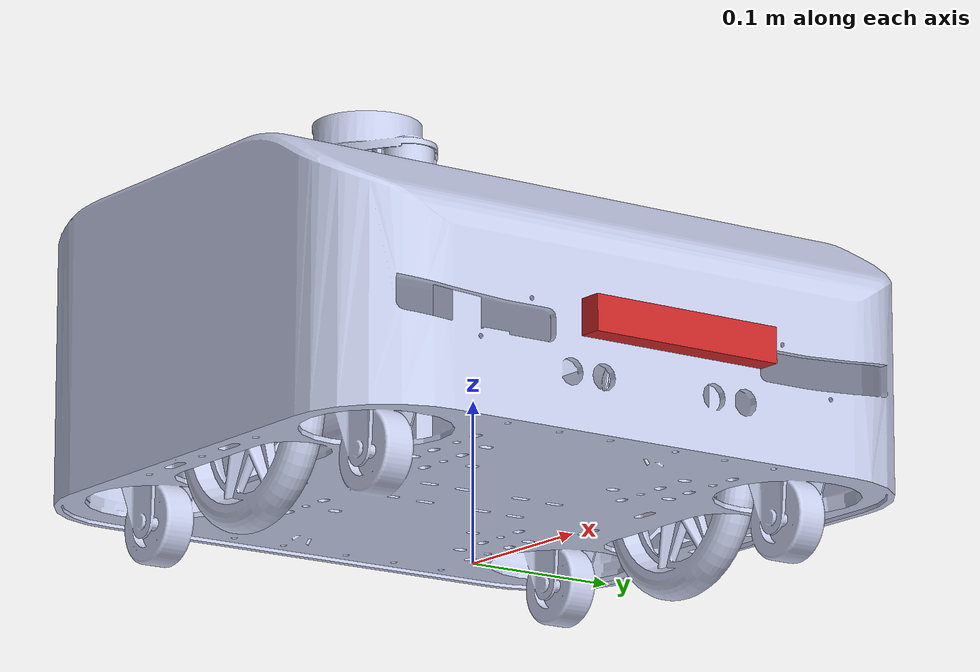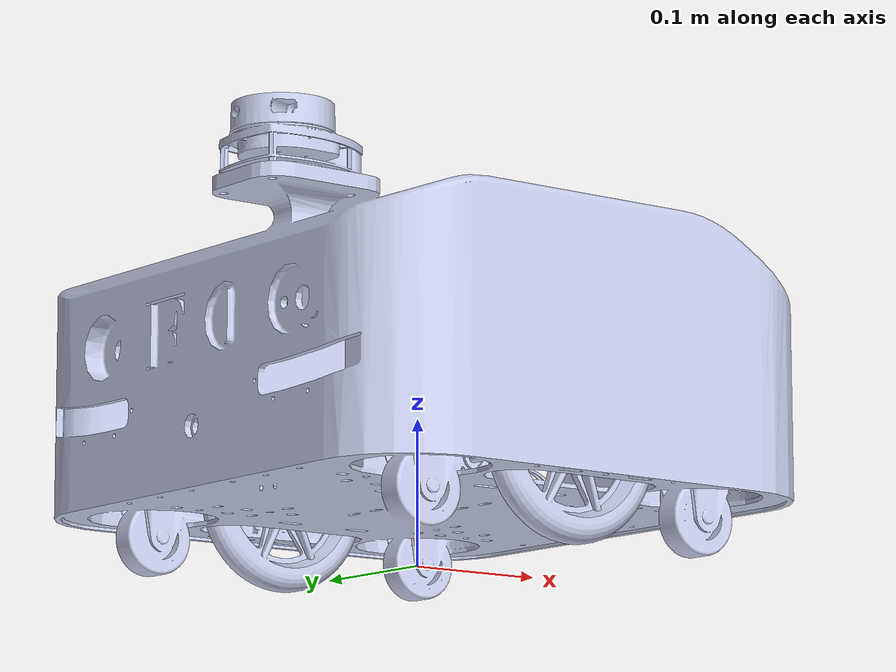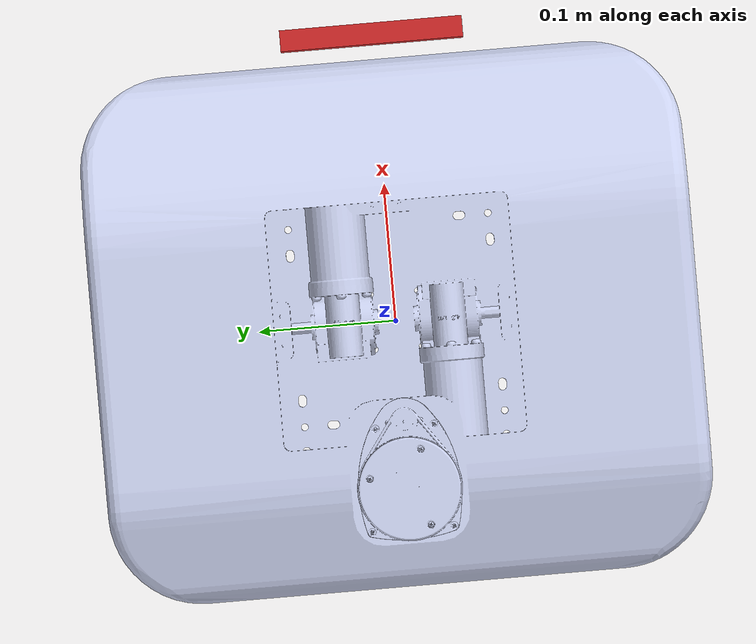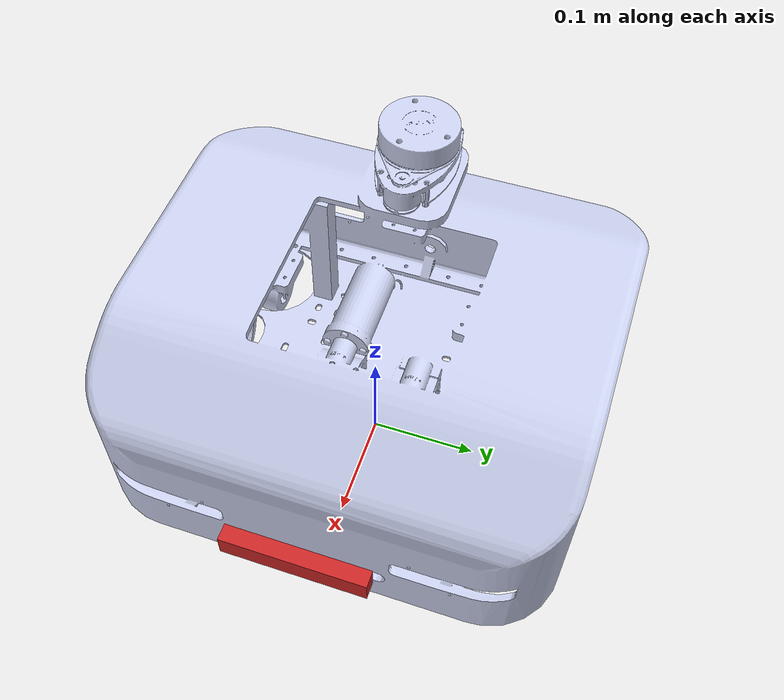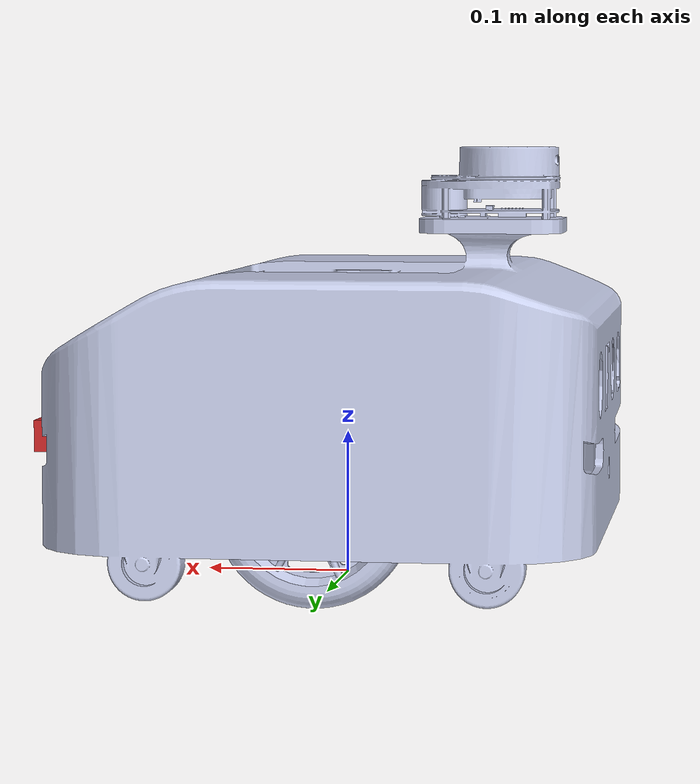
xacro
<?xml version="1.0"?>
<robot xmlns:xacro="http://www.ros.org/wiki/xacro"  name="version_0">

    <!-- Example link -->
    <xacro:include filename="robot_core.xacro" />

    <xacro:include filename="lidar.xacro" />
    <xacro:include filename="camera.xacro" />
</robot>

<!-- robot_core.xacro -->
<robot xmlns:xacro="http://www.ros.org/wiki/xacro">

<!-- Base Footprint Setup -->

<link name="base_footprint" />
<joint name="base_footprint_joint" type="fixed">
    <origin xyz="0 0 0" rpy="0 0 0" />
    <parent link="base_footprint" />
    <child link="base_link" />
</joint>

<!-- Base Link Body -->

<link name="base_link">
    <inertial>
        <origin xyz="-0.010357 0.00080258 0.12082" rpy="0 0 0" />
        <mass value="3.3192" />
        <inertia
        ixx="0.058318"
        ixy="0.00047719"
        ixz="0.0017019"
        iyy="0.049572"
        iyz="1.0982E-05"
        izz="0.090114" />
    </inertial>
    <visual>
        <origin xyz="0 0 0" rpy="0 0 0" />
        <geometry>
            <mesh filename="package://robot_urdf/meshes/base_link.STL" />
        </geometry>
        <material name="">
            <color rgba="0.79216 0.81961 0.93333 1" />
        </material>
    </visual>
    <collision>
        <origin xyz="0 0 0" rpy="0 0 0" />
        <geometry>
            <mesh filename="package://robot_urdf/meshes/base_link.STL" />
        </geometry>
    </collision>
</link>

<gazebo reference="base_link">
    <material>Gazebo/White</material>
    <mu1 value="0.001"/>
    <mu2 value="0.001"/>
</gazebo>

<!-- Right Wheel + Joint -->

<link name="right_wheel">
    <inertial>
        <origin xyz="-1.7659E-14 -6.4782E-14 -2.6336E-05" rpy="0 0 0" />
        <mass value="0.15848" />
        <inertia
        ixx="0.00022462"
        ixy="5.5078E-17"
        ixz="-1.9887E-17"
        iyy="0.00022462"
        iyz="-7.6718E-17"
        izz="0.00043866" />
    </inertial>
    <visual>
        <origin xyz="0 0 0" rpy="0 0 0" />
        <geometry>
            <mesh filename="package://robot_urdf/meshes/right_wheel.STL" />
        </geometry>
        <material name="">
            <color rgba="0.79216 0.81961 0.93333 1" />
        </material>
    </visual>
    <collision>
        <origin xyz="0 0 0" rpy="0 0 0" />
        <geometry>
            <mesh filename="package://robot_urdf/meshes/right_wheel.STL" />
        </geometry>
    </collision>
</link>

<joint name="right_wheel" type="continuous">
    <origin xyz="0.0005 -0.15942 0.065" rpy="-1.5708 0 -3.1416" />
    <parent link="base_link" />
    <child link="right_wheel" />
    <axis xyz="0 0 -1" />
</joint>

<gazebo reference="right_wheel">
    <material>Gazebo/Black</material>
</gazebo>

<!-- Left Wheel + Joint -->

<link name="left_wheel">
    <inertial>
        <origin xyz="5.8898E-14 -3.228E-14 2.6336E-5" rpy="0 0 0" />
        <mass value="0.15848" />
        <inertia
            ixx="0.00022462"
            ixy="-7.1336E-17"
            ixz="-6.9014E-17"
            iyy="0.00022462"
            iyz="3.8969E-17"
            izz="0.00043866" />
    </inertial>
    <visual>
        <origin xyz="0 0 0" rpy="0 0 0" />
        <geometry>
            <mesh filename="package://robot_urdf/meshes/left_wheel.STL" />
        </geometry>
        <material name="">
            <color rgba="0.79216 0.81961 0.93333 1" />
        </material>
    </visual>
    <collision>
        <origin xyz="0 0 0" rpy="0 0 0" />
        <geometry>
            <mesh filename="package://robot_urdf/meshes/left_wheel.STL" />
        </geometry>
    </collision>
</link>

<joint name="left_wheel" type="continuous">
    <origin xyz="0.0005 0.15807 0.065" rpy="-1.5708 0 0" />
    <parent link="base_link" />
    <child link="left_wheel" />
    <axis xyz="0 0 1" />
</joint>

<gazebo reference="left_wheel">
    <material>Gazebo/Black</material>
</gazebo>

<transmission name="tran1">
    <type>transmission_interface/SimpleTransmission</type>
    <joint name="right_wheel_joint">
      <hardwareInterface>hardware_interface/VelocityJointInterface</hardwareInterface>
    </joint>
    <actuator name="motor1">
       <hardwareInterface>hardware_interface/VelocityJointInterface</hardwareInterface>
     <mechanicalReduction>1</mechanicalReduction>
    </actuator>
  </transmission>

  <transmission name="tran2">
    <type>transmission_interface/SimpleTransmission</type>
    <joint name="left_wheel_joint">
      <hardwareInterface>hardware_interface/VelocityJointInterface</hardwareInterface>
    </joint>
    <actuator name="motor2">
      <hardwareInterface>hardware_interface/VelocityJointInterface</hardwareInterface>
      <mechanicalReduction>1</mechanicalReduction>
    </actuator>
  </transmission>

</robot>

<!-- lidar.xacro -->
<robot xmlns:xacro="http://www.ros.org/wiki/xacro" >

    <link name="laser">
    <inertial>
      <origin
        xyz="0.010632 -0.0016703 -0.018432"
        rpy="0 0 0" />
      <mass value="0.073084" />
      <inertia
        ixx="1.9581E-05"
        ixy="-1.0387E-07"
        ixz="-4.2835E-07"
        iyy="2.4125E-05"
        iyz="9.4546E-09"
        izz="4.1418E-05" />
    </inertial>
    <visual>
      <origin
        xyz="0 0 0" rpy="0 0 0" />
      <geometry>
        <mesh filename="package://robot_urdf/meshes/lidar.STL" />
      </geometry>
      <material
        name="">
        <color rgba="0.79216 0.81961 0.93333 1" />
      </material>
    </visual>
    <collision>
      <origin
        xyz="0 0 0"
        rpy="0 0 0" />
      <geometry>
        <mesh filename="package://robot_urdf/meshes/lidar.STL" />
      </geometry>
    </collision>
  </link>

  <joint name="laser" type="fixed">
    <origin
      xyz="-0.11245 0.0011383 0.29097"
      rpy="0 0 0" />
    <parent
      link="base_link" />
    <child
      link="laser" />
    <axis
      xyz="0 0 0" />
  </joint>

  <gazebo reference="laser">
    <material>Gazebo/Red</material>
  </gazebo>

  <gazebo reference="laser">
    <sensor name="lidar" type="ray">
      <always_on>true</always_on>
      <visualize>true</visualize>
      <update_rate>10</update_rate>
      <ray>
        <scan>
          <horizontal>
            <samples>360</samples>
            <resolution>1.000000</resolution>
            <min_angle>0.000000</min_angle>
            <max_angle>6.280000</max_angle>
          </horizontal>
        </scan>
        <range>
          <min>0.120000</min>
          <max>3.5</max>
          <resolution>0.015000</resolution>
        </range>
        <noise>
          <type>gaussian</type>
          <mean>0.0</mean>
          <stddev>0.01</stddev>
        </noise>
      </ray>
      <plugin name="scan" filename="libgazebo_ros_ray_sensor.so">
        <ros>
          <remapping>~/out:=scan</remapping>
        </ros>
        <output_type>sensor_msgs/LaserScan</output_type>
        <frame_name>laser</frame_name>
      </plugin>
    </sensor>
  </gazebo>

</robot>

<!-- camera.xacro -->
<robot xmlns:xacro="http://www.ros.org/wiki/xacro" >

    <link name="camera_link">
        <visual>
          <origin xyz="0 0 0" rpy="0 0 0"/>
          <geometry>
            <box size="0.015 0.130 0.022"/>
          </geometry>
        </visual>

      </link>

      <joint name="camera_joint" type="fixed">
        <parent link="base_link"/>
        <child link="camera_link"/>
        <origin xyz="0.205 0 0.1" rpy="0 0 0"/>
      </joint>

      <link name="camera_depth_frame"/>

      <joint name="camera_depth_joint" type="fixed">
        <origin xyz="0 0 0" rpy="-1.57079633  0 -1.57079633 "/>
        <parent link="camera_link"/>
        <child link="camera_depth_frame"/>
      </joint>

      <gazebo reference="camera_link">
        <material>Gazebo/Red</material>
      </gazebo>

      <gazebo reference="camera_link">
        <sensor name="depth_camera" type="depth">
          <visualize>true</visualize>
          <update_rate>10.0</update_rate>
          <camera name="camera">
            <horizontal_fov>1.047198</horizontal_fov>
            <image>
              <width>640</width>
              <height>480</height>
              <format>B8G8R8</format>
            </image>
            <clip>
              <near>0.05</near>
              <far>3</far>
            </clip>
          </camera>
          <plugin name="depth_camera_controller" filename="libgazebo_ros_camera.so">
            <baseline>0.2</baseline>
            <alwaysOn>true</alwaysOn>
            <updateRate>0.0</updateRate>
            <frame_name>camera_depth_frame</frame_name>
            <pointCloudCutoff>0.5</pointCloudCutoff>
            <pointCloudCutoffMax>3.0</pointCloudCutoffMax>
            <distortionK1>0</distortionK1>
            <distortionK2>0</distortionK2>
            <distortionK3>0</distortionK3>
            <distortionT1>0</distortionT1>
            <distortionT2>0</distortionT2>
            <CxPrime>0</CxPrime>
            <Cx>0</Cx>
            <Cy>0</Cy>
            <focalLength>0</focalLength>
            <hackBaseline>0</hackBaseline>
            <min_depth>0.1</min_depth>
            <max_depth>100</max_depth>
          </plugin>
        </sensor>
      </gazebo>

</robot>
